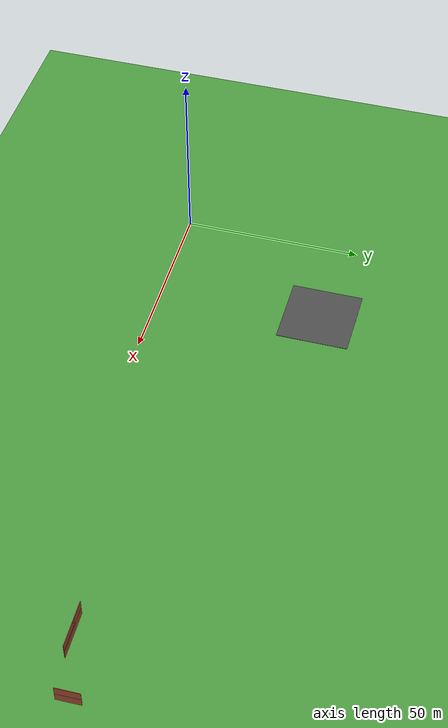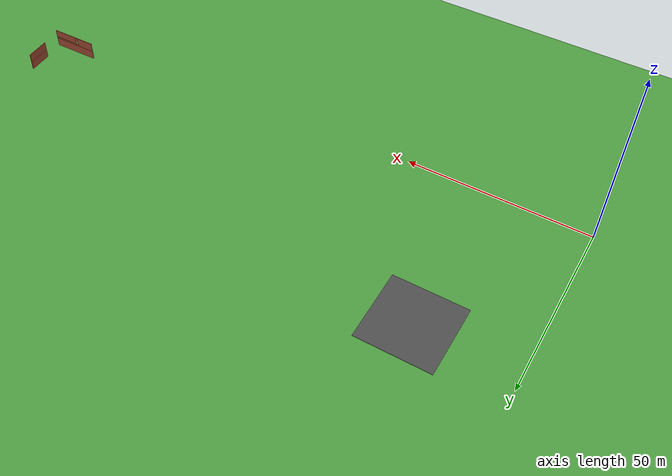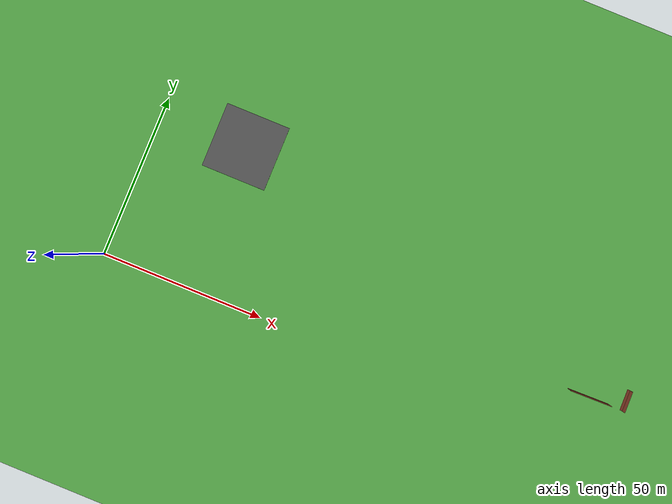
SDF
<sdf version="1.7">
 <world name="default">
  <model name="ground_plane">
   <static>1</static>
   <link name="link">
    <collision name="collision">
     <geometry><plane><normal>0 0 1</normal><size>100 100</size></plane></geometry>
     <surface>
      <contact><collide_bitmask>65535</collide_bitmask></contact>
      <friction><ode><mu>100</mu><mu2>50</mu2></ode></friction>
     </surface>
    </collision>
    <visual name="grass">
     <pose>0 0 -0.1 0 -0 0</pose>
     <cast_shadows>0</cast_shadows>
     <geometry><plane><normal>0 0 1</normal><size>1000 1000</size></plane></geometry>
     <material>
      <script><uri>file://media/materials/scripts/gazebo.material</uri><name>Gazebo/Grass</name></script>
     </material>
    </visual>
   </link>
  </model>
  <model name="asphalt_plane">
   <static>1</static>
   <link name="link">
    <collision name="collision"><geometry><box><size>20 20 0.1</size></box></geometry></collision>
    <visual name="visual">
     <cast_shadows>0</cast_shadows>
     <geometry><box><size>20 20 0.1</size></box></geometry>
     <material>
      <script>
       <uri>model://asphalt_plane/materials/scripts</uri>
       <uri>model://asphalt_plane/materials/textures</uri>
       <name>vrc/asphalt</name>
      </script>
     </material>
    </visual>
   </link>
   <pose>26.7323 45.4974 0 0 -0 0</pose>
  </model>
  <model name="my_building_1">
   <link name="Wall_86">
    <pose>-7.30057 0 7.5 0 0 -1.5708</pose>
    <visual name="Wall_86_Visual">
     <pose>0 0 1.25 0 -0 0</pose>
     <geometry><box><size>12.25 0.15 2.5</size></box></geometry>
     <material>
      <script><uri>file://media/materials/scripts/gazebo.material</uri><name>Gazebo/Bricks</name></script>
      <ambient>1 1 1 1</ambient>
      <shader type="pixel"/>
     </material>
     <meta><layer>3</layer></meta>
    </visual>
    <collision name="Wall_86_Collision">
     <pose>0 0 1.25 0 -0 0</pose>
     <geometry><box><size>12.25 0.15 2.5</size></box></geometry>
     <surface>
      <friction>
       <ode><mu>1</mu><mu2>1</mu2><fdir1>0 0 0</fdir1><slip1>0</slip1><slip2>0</slip2></ode>
       <torsional>
        <coefficient>1</coefficient>
        <patch_radius>0</patch_radius>
        <surface_radius>0</surface_radius>
        <use_patch_radius>1</use_patch_radius>
        <ode><slip>0</slip></ode>
       </torsional>
      </friction>
      <bounce><restitution_coefficient>0</restitution_coefficient><threshold>1e+06</threshold></bounce>
      <contact>
       <collide_without_contact>0</collide_without_contact>
       <collide_without_contact_bitmask>1</collide_without_contact_bitmask>
       <collide_bitmask>1</collide_bitmask>
       <ode>
        <soft_cfm>0</soft_cfm>
        <soft_erp>0.2</soft_erp>
        <kp>1e+13</kp>
        <kd>1</kd>
        <max_vel>0.01</max_vel>
        <min_depth>0</min_depth>
       </ode>
       <bullet>
        <split_impulse>1</split_impulse>
        <split_impulse_penetration_threshold>-0.01</split_impulse_penetration_threshold>
        <soft_cfm>0</soft_cfm>
        <soft_erp>0.2</soft_erp>
        <kp>1e+13</kp>
        <kd>1</kd>
       </bullet>
      </contact>
     </surface>
    </collision>
   </link>
   <link name="Wall_90">
    <pose>-7.30057 0 10 0 0 -1.5708</pose>
    <visual name="Wall_90_Visual_1">
     <pose>2.39424 0 0.25 0 -0 0</pose>
     <geometry><box><size>7.46151 0.15 0.5</size></box></geometry>
     <material>
      <script><uri>file://media/materials/scripts/gazebo.material</uri><name>Gazebo/Bricks</name></script>
      <ambient>1 1 1 1</ambient>
      <shader type="pixel"/>
     </material>
     <meta><layer>4</layer></meta>
    </visual>
    <visual name="Wall_90_Visual_0">
     <pose>-3.73076 0 1.25 0 -0 0</pose>
     <geometry><box><size>4.78849 0.15 2.5</size></box></geometry>
     <material>
      <script><uri>file://media/materials/scripts/gazebo.material</uri><name>Gazebo/Bricks</name></script>
      <ambient>1 1 1 1</ambient>
      <shader type="pixel"/>
     </material>
     <meta><layer>4</layer></meta>
    </visual>
    <visual name="Wall_90_Visual_3">
     <pose>-0.936514 0 1.9 0 -0 0</pose>
     <geometry><box><size>0.8 0.15 1.2</size></box></geometry>
     <material>
      <script><uri>file://media/materials/scripts/gazebo.material</uri><name>Gazebo/Bricks</name></script>
      <ambient>1 1 1 1</ambient>
      <shader type="pixel"/>
     </material>
     <meta><layer>4</layer></meta>
    </visual>
    <visual name="Wall_90_Visual_2">
     <pose>2.79424 0 1.5 0 -0 0</pose>
     <geometry><box><size>6.66151 0.15 2</size></box></geometry>
     <material>
      <script><uri>file://media/materials/scripts/gazebo.material</uri><name>Gazebo/Bricks</name></script>
      <ambient>1 1 1 1</ambient>
      <shader type="pixel"/>
     </material>
     <meta><layer>4</layer></meta>
    </visual>
    <collision name="Wall_90_Collision_0">
     <pose>-3.73076 0 1.25 0 -0 0</pose>
     <geometry><box><size>4.78849 0.15 2.5</size></box></geometry>
     <surface>
      <friction>
       <ode><mu>1</mu><mu2>1</mu2><fdir1>0 0 0</fdir1><slip1>0</slip1><slip2>0</slip2></ode>
       <torsional>
        <coefficient>1</coefficient>
        <patch_radius>0</patch_radius>
        <surface_radius>0</surface_radius>
        <use_patch_radius>1</use_patch_radius>
        <ode><slip>0</slip></ode>
       </torsional>
      </friction>
      <bounce><restitution_coefficient>0</restitution_coefficient><threshold>1e+06</threshold></bounce>
      <contact>
       <collide_without_contact>0</collide_without_contact>
       <collide_without_contact_bitmask>1</collide_without_contact_bitmask>
       <collide_bitmask>1</collide_bitmask>
       <ode>
        <soft_cfm>0</soft_cfm>
        <soft_erp>0.2</soft_erp>
        <kp>1e+13</kp>
        <kd>1</kd>
        <max_vel>0.01</max_vel>
        <min_depth>0</min_depth>
       </ode>
       <bullet>
        <split_impulse>1</split_impulse>
        <split_impulse_penetration_threshold>-0.01</split_impulse_penetration_threshold>
        <soft_cfm>0</soft_cfm>
        <soft_erp>0.2</soft_erp>
        <kp>1e+13</kp>
        <kd>1</kd>
       </bullet>
      </contact>
     </surface>
    </collision>
    <collision name="Wall_90_Collision_1">
     <pose>2.39424 0 0.25 0 -0 0</pose>
     <geometry><box><size>7.46151 0.15 0.5</size></box></geometry>
     <surface>
      <friction>
       <ode><mu>1</mu><mu2>1</mu2><fdir1>0 0 0</fdir1><slip1>0</slip1><slip2>0</slip2></ode>
       <torsional>
        <coefficient>1</coefficient>
        <patch_radius>0</patch_radius>
        <surface_radius>0</surface_radius>
        <use_patch_radius>1</use_patch_radius>
        <ode><slip>0</slip></ode>
       </torsional>
      </friction>
      <bounce><restitution_coefficient>0</restitution_coefficient><threshold>1e+06</threshold></bounce>
      <contact>
       <collide_without_contact>0</collide_without_contact>
       <collide_without_contact_bitmask>1</collide_without_contact_bitmask>
       <collide_bitmask>1</collide_bitmask>
       <ode>
        <soft_cfm>0</soft_cfm>
        <soft_erp>0.2</soft_erp>
        <kp>1e+13</kp>
        <kd>1</kd>
        <max_vel>0.01</max_vel>
        <min_depth>0</min_depth>
       </ode>
       <bullet>
        <split_impulse>1</split_impulse>
        <split_impulse_penetration_threshold>-0.01</split_impulse_penetration_threshold>
        <soft_cfm>0</soft_cfm>
        <soft_erp>0.2</soft_erp>
        <kp>1e+13</kp>
        <kd>1</kd>
       </bullet>
      </contact>
     </surface>
    </collision>
    <collision name="Wall_90_Collision_2">
     <pose>2.79424 0 1.5 0 -0 0</pose>
     <geometry><box><size>6.66151 0.15 2</size></box></geometry>
     <surface>
      <friction>
       <ode><mu>1</mu><mu2>1</mu2><fdir1>0 0 0</fdir1><slip1>0</slip1><slip2>0</slip2></ode>
       <torsional>
        <coefficient>1</coefficient>
        <patch_radius>0</patch_radius>
        <surface_radius>0</surface_radius>
        <use_patch_radius>1</use_patch_radius>
        <ode><slip>0</slip></ode>
       </torsional>
      </friction>
      <bounce><restitution_coefficient>0</restitution_coefficient><threshold>1e+06</threshold></bounce>
      <contact>
       <collide_without_contact>0</collide_without_contact>
       <collide_without_contact_bitmask>1</collide_without_contact_bitmask>
       <collide_bitmask>1</collide_bitmask>
       <ode>
        <soft_cfm>0</soft_cfm>
        <soft_erp>0.2</soft_erp>
        <kp>1e+13</kp>
        <kd>1</kd>
        <max_vel>0.01</max_vel>
        <min_depth>0</min_depth>
       </ode>
       <bullet>
        <split_impulse>1</split_impulse>
        <split_impulse_penetration_threshold>-0.01</split_impulse_penetration_threshold>
        <soft_cfm>0</soft_cfm>
        <soft_erp>0.2</soft_erp>
        <kp>1e+13</kp>
        <kd>1</kd>
       </bullet>
      </contact>
     </surface>
    </collision>
    <collision name="Wall_90_Collision_3">
     <pose>-0.936514 0 1.9 0 -0 0</pose>
     <geometry><box><size>0.8 0.15 1.2</size></box></geometry>
     <surface>
      <friction>
       <ode><mu>1</mu><mu2>1</mu2><fdir1>0 0 0</fdir1><slip1>0</slip1><slip2>0</slip2></ode>
       <torsional>
        <coefficient>1</coefficient>
        <patch_radius>0</patch_radius>
        <surface_radius>0</surface_radius>
        <use_patch_radius>1</use_patch_radius>
        <ode><slip>0</slip></ode>
       </torsional>
      </friction>
      <bounce><restitution_coefficient>0</restitution_coefficient><threshold>1e+06</threshold></bounce>
      <contact>
       <collide_without_contact>0</collide_without_contact>
       <collide_without_contact_bitmask>1</collide_without_contact_bitmask>
       <collide_bitmask>1</collide_bitmask>
       <ode>
        <soft_cfm>0</soft_cfm>
        <soft_erp>0.2</soft_erp>
        <kp>1e+13</kp>
        <kd>1</kd>
        <max_vel>0.01</max_vel>
        <min_depth>0</min_depth>
       </ode>
       <bullet>
        <split_impulse>1</split_impulse>
        <split_impulse_penetration_threshold>-0.01</split_impulse_penetration_threshold>
        <soft_cfm>0</soft_cfm>
        <soft_erp>0.2</soft_erp>
        <kp>1e+13</kp>
        <kd>1</kd>
       </bullet>
      </contact>
     </surface>
    </collision>
   </link>
   <static>1</static>
   <pose>146.525 23.1421 0 0 -0 1.58902</pose>
  </model>
  <model name="my_building_1_clone">
   <link name="Wall_20">
    <pose>-4.12557 6.05 0 0 -0 3.14159</pose>
    <visual name="Wall_20_Visual">
     <pose>0 0 1.25 0 -0 0</pose>
     <geometry><box><size>6.5 0.15 2.5</size></box></geometry>
     <material>
      <script><uri>file://media/materials/scripts/gazebo.material</uri><name>Gazebo/Bricks</name></script>
      <ambient>1 1 1 1</ambient>
      <shader type="pixel"/>
     </material>
     <meta><layer>0</layer></meta>
    </visual>
    <collision name="Wall_20_Collision">
     <pose>0 0 1.25 0 -0 0</pose>
     <geometry><box><size>6.5 0.15 2.5</size></box></geometry>
     <surface>
      <friction>
       <ode><mu>1</mu><mu2>1</mu2><fdir1>0 0 0</fdir1><slip1>0</slip1><slip2>0</slip2></ode>
       <torsional>
        <coefficient>1</coefficient>
        <patch_radius>0</patch_radius>
        <surface_radius>0</surface_radius>
        <use_patch_radius>1</use_patch_radius>
        <ode><slip>0</slip></ode>
       </torsional>
      </friction>
      <bounce><restitution_coefficient>0</restitution_coefficient><threshold>1e+06</threshold></bounce>
      <contact>
       <collide_without_contact>0</collide_without_contact>
       <collide_without_contact_bitmask>1</collide_without_contact_bitmask>
       <collide_bitmask>1</collide_bitmask>
       <ode>
        <soft_cfm>0</soft_cfm>
        <soft_erp>0.2</soft_erp>
        <kp>1e+13</kp>
        <kd>1</kd>
        <max_vel>0.01</max_vel>
        <min_depth>0</min_depth>
       </ode>
       <bullet>
        <split_impulse>1</split_impulse>
        <split_impulse_penetration_threshold>-0.01</split_impulse_penetration_threshold>
        <soft_cfm>0</soft_cfm>
        <soft_erp>0.2</soft_erp>
        <kp>1e+13</kp>
        <kd>1</kd>
       </bullet>
      </contact>
     </surface>
    </collision>
   </link>
   <link name="Wall_77">
    <pose>-4.12557 6.05 2.5 0 -0 3.14159</pose>
    <visual name="Wall_77_Visual">
     <pose>0 0 1.25 0 -0 0</pose>
     <geometry><box><size>6.5 0.15 2.5</size></box></geometry>
     <material>
      <script><uri>file://media/materials/scripts/gazebo.material</uri><name>Gazebo/Bricks</name></script>
      <ambient>1 1 1 1</ambient>
      <shader type="pixel"/>
     </material>
     <meta><layer>1</layer></meta>
    </visual>
    <collision name="Wall_77_Collision">
     <pose>0 0 1.25 0 -0 0</pose>
     <geometry><box><size>6.5 0.15 2.5</size></box></geometry>
     <surface>
      <friction>
       <ode><mu>1</mu><mu2>1</mu2><fdir1>0 0 0</fdir1><slip1>0</slip1><slip2>0</slip2></ode>
       <torsional>
        <coefficient>1</coefficient>
        <patch_radius>0</patch_radius>
        <surface_radius>0</surface_radius>
        <use_patch_radius>1</use_patch_radius>
        <ode><slip>0</slip></ode>
       </torsional>
      </friction>
      <bounce><restitution_coefficient>0</restitution_coefficient><threshold>1e+06</threshold></bounce>
      <contact>
       <collide_without_contact>0</collide_without_contact>
       <collide_without_contact_bitmask>1</collide_without_contact_bitmask>
       <collide_bitmask>1</collide_bitmask>
       <ode>
        <soft_cfm>0</soft_cfm>
        <soft_erp>0.2</soft_erp>
        <kp>1e+13</kp>
        <kd>1</kd>
        <max_vel>0.01</max_vel>
        <min_depth>0</min_depth>
       </ode>
       <bullet>
        <split_impulse>1</split_impulse>
        <split_impulse_penetration_threshold>-0.01</split_impulse_penetration_threshold>
        <soft_cfm>0</soft_cfm>
        <soft_erp>0.2</soft_erp>
        <kp>1e+13</kp>
        <kd>1</kd>
       </bullet>
      </contact>
     </surface>
    </collision>
   </link>
   <static>1</static>
   <pose>165.249 22.7467 0 0 -0 1.58902</pose>
  </model>
 </world>
</sdf>
